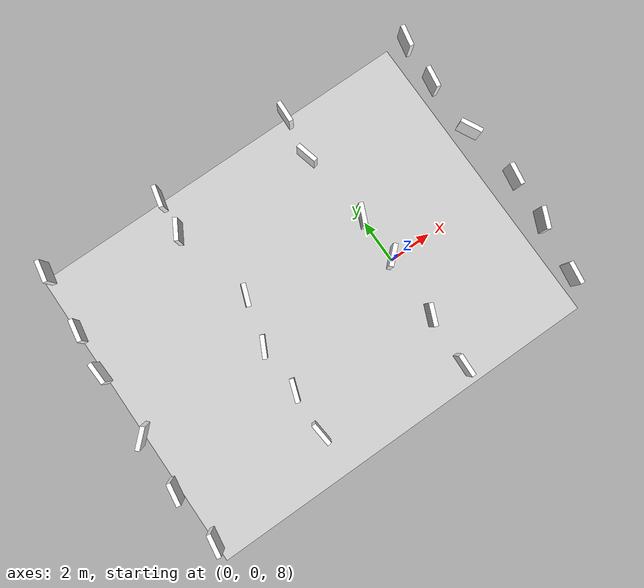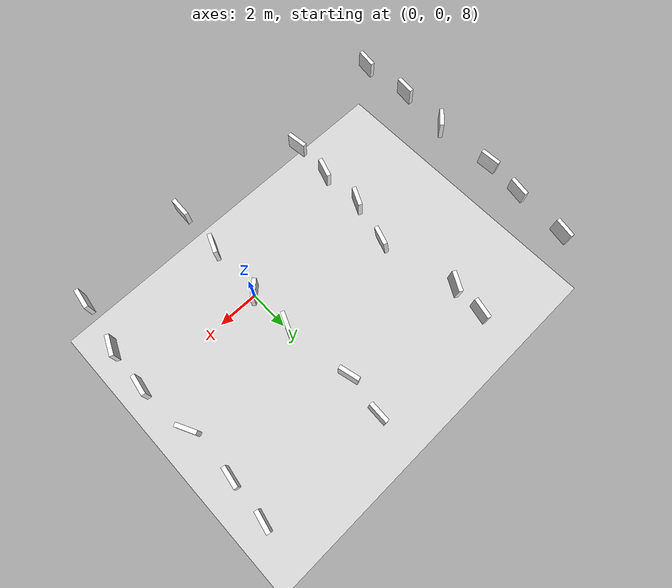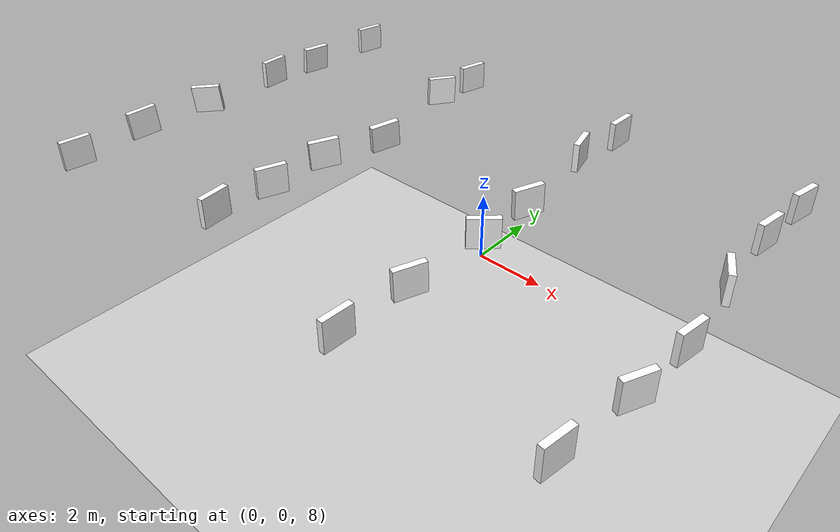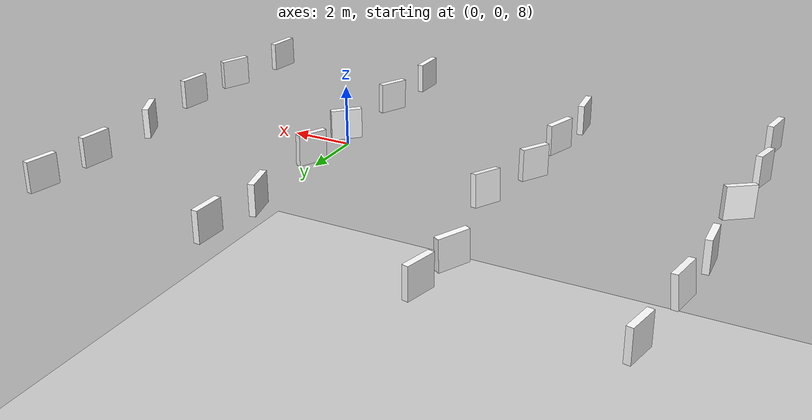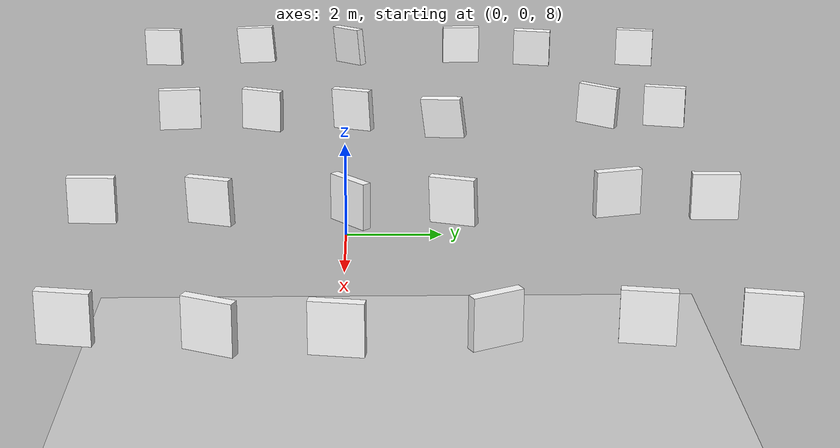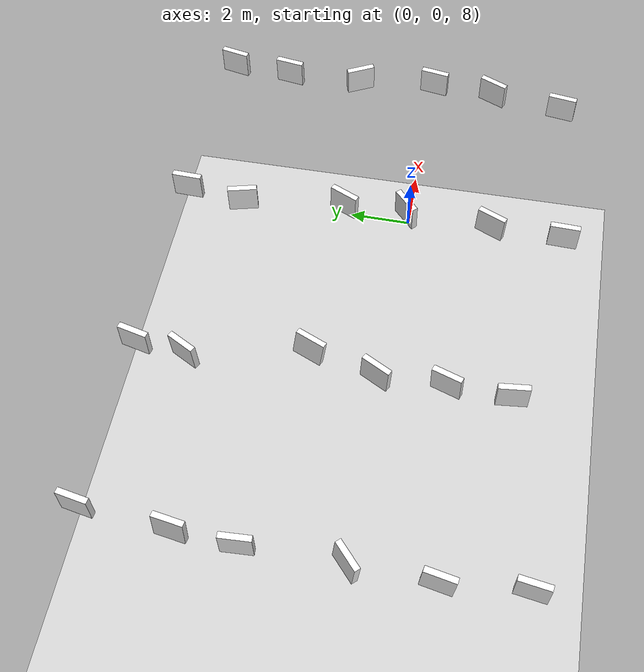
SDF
<sdf version="1.7">
 <world name="default">
  <light name="sun" type="directional">
   <pose>0 0 10 0 -0 0</pose>
   <diffuse>0.8 0.8 0.8 1</diffuse>
   <specular>0.2 0.2 0.2 1</specular>
   <attenuation>
    <range>1000</range>
    <constant>0.9</constant>
    <linear>0.01</linear>
    <quadratic>0.001</quadratic>
   </attenuation>
   <direction>-0.5 0.1 -0.9</direction>
   <spot><inner_angle>0</inner_angle><outer_angle>0</outer_angle><falloff>0</falloff></spot>
  </light>
  <model name="ground_plane">
   <static>1</static>
   <link name="link">
    <collision name="collision">
     <geometry><plane><normal>0 0 1</normal><size>100 100</size></plane></geometry>
     <surface>
      <contact><collide_bitmask>65535</collide_bitmask></contact>
      <friction><ode><mu>100</mu><mu2>50</mu2></ode></friction>
     </surface>
    </collision>
    <visual name="visual">
     <cast_shadows>0</cast_shadows>
     <geometry><plane><normal>0 0 1</normal><size>100 100</size></plane></geometry>
     <material>
      <script><uri>file://media/materials/scripts/gazebo.material</uri><name>Gazebo/Grey</name></script>
     </material>
    </visual>
   </link>
  </model>
  <physics name="default_physics" default="0" type="ode">
   <ode>
    <solver>
     <type>quick</type>
     <iters>10</iters>
     <sor>1.3</sor>
     <use_dynamic_moi_rescaling>0</use_dynamic_moi_rescaling>
    </solver>
    <constraints>
     <cfm>0</cfm>
     <erp>0.2</erp>
     <contact_max_correcting_vel>100</contact_max_correcting_vel>
     <contact_surface_layer>0.001</contact_surface_layer>
    </constraints>
   </ode>
   <max_step_size>0.004</max_step_size>
   <real_time_factor>1</real_time_factor>
   <real_time_update_rate>250</real_time_update_rate>
  </physics>
  <gravity>0 0 -9.8066</gravity>
  <magnetic_field>6e-06 2.3e-05 -4.2e-05</magnetic_field>
  <atmosphere type="adiabatic"/>
  <scene><ambient>0.4 0.4 0.4 1</ambient><background>0.7 0.7 0.7 1</background><shadows>1</shadows></scene>
  <spherical_coordinates>
   <surface_model>EARTH_WGS84</surface_model>
   <latitude_deg>0</latitude_deg>
   <longitude_deg>0</longitude_deg>
   <elevation>0</elevation>
   <heading_deg>0</heading_deg>
  </spherical_coordinates>
  <model name="aruco_marker1_clone">
   <link name="marker">
    <visual name="visual">
     <geometry><box><size>1 0.2 1</size></box></geometry>
     <material>
      <script>
       <uri>model://aruco_marker1/materials/scripts</uri>
       <uri>model://aruco_marker1/materials/textures</uri>
       <name>arucomarker1/Marker</name>
      </script>
      <ambient>1 1 1 1</ambient>
      <diffuse>1 1 1 1</diffuse>
      <specular>0 0 0 1</specular>
      <emissive>1 1 1 0</emissive>
      <shader type="vertex"><normal_map>__default__</normal_map></shader>
     </material>
    </visual>
    <collision name="collision"><geometry><box><size>1.2 0.8 1</size></box></geometry></collision>
    <inertial>
     <inertia><ixx>1</ixx><ixy>0</ixy><ixz>0</ixz><iyy>1</iyy><iyz>0</iyz><izz>1</izz></inertia>
     <mass>1</mass>
    </inertial>
   </link>
   <pose>5.87164 5.36753 8.75879 -0.001687 0.005684 1.41443</pose>
  </model>
  <model name="aruco_marker1_clone_0">
   <link name="marker">
    <visual name="visual">
     <geometry><box><size>1 0.2 1</size></box></geometry>
     <material>
      <script>
       <uri>model://aruco_marker1/materials/scripts</uri>
       <uri>model://aruco_marker1/materials/textures</uri>
       <name>arucomarker1/Marker</name>
      </script>
      <ambient>1 1 1 1</ambient>
      <diffuse>1 1 1 1</diffuse>
      <specular>0 0 0 1</specular>
      <emissive>1 1 1 0</emissive>
      <shader type="vertex"><normal_map>__default__</normal_map></shader>
     </material>
    </visual>
    <collision name="collision"><geometry><box><size>1.2 0.8 1</size></box></geometry></collision>
    <inertial>
     <inertia><ixx>1</ixx><ixy>0</ixy><ixz>0</ixz><iyy>1</iyy><iyz>0</iyz><izz>1</izz></inertia>
     <mass>1</mass>
    </inertial>
   </link>
   <pose>5.93775 2.69715 8.75946 0.002248 0.004376 2.03418</pose>
  </model>
  <model name="aruco_marker1_clone_2">
   <link name="marker">
    <visual name="visual">
     <geometry><box><size>1 0.2 1</size></box></geometry>
     <material>
      <script>
       <uri>model://aruco_marker1/materials/scripts</uri>
       <uri>model://aruco_marker1/materials/textures</uri>
       <name>arucomarker1/Marker</name>
      </script>
      <ambient>1 1 1 1</ambient>
      <diffuse>1 1 1 1</diffuse>
      <specular>0 0 0 1</specular>
      <emissive>1 1 1 0</emissive>
      <shader type="vertex"><normal_map>__default__</normal_map></shader>
     </material>
    </visual>
    <collision name="collision"><geometry><box><size>1.2 0.8 1</size></box></geometry></collision>
    <inertial>
     <inertia><ixx>1</ixx><ixy>0</ixy><ixz>0</ixz><iyy>1</iyy><iyz>0</iyz><izz>1</izz></inertia>
     <mass>1</mass>
    </inertial>
   </link>
   <pose>6.11721 -2.26937 8.75903 -0.001675 0.004039 1.153</pose>
  </model>
  <model name="aruco_marker1_clone_3">
   <link name="marker">
    <visual name="visual">
     <geometry><box><size>1 0.2 1</size></box></geometry>
     <material>
      <script>
       <uri>model://aruco_marker1/materials/scripts</uri>
       <uri>model://aruco_marker1/materials/textures</uri>
       <name>arucomarker1/Marker</name>
      </script>
      <ambient>1 1 1 1</ambient>
      <diffuse>1 1 1 1</diffuse>
      <specular>0 0 0 1</specular>
      <emissive>1 1 1 0</emissive>
      <shader type="vertex"><normal_map>__default__</normal_map></shader>
     </material>
    </visual>
    <collision name="collision"><geometry><box><size>1.2 0.8 1</size></box></geometry></collision>
    <inertial>
     <inertia><ixx>1</ixx><ixy>0</ixy><ixz>0</ixz><iyy>1</iyy><iyz>0</iyz><izz>1</izz></inertia>
     <mass>1</mass>
    </inertial>
   </link>
   <pose>5.74911 -4.82611 8.7588 -0.001879 0.005708 1.42094</pose>
  </model>
  <model name="aruco_marker1_clone_4">
   <link name="marker">
    <visual name="visual">
     <geometry><box><size>1 0.2 1</size></box></geometry>
     <material>
      <script>
       <uri>model://aruco_marker1/materials/scripts</uri>
       <uri>model://aruco_marker1/materials/textures</uri>
       <name>arucomarker1/Marker</name>
      </script>
      <ambient>1 1 1 1</ambient>
      <diffuse>1 1 1 1</diffuse>
      <specular>0 0 0 1</specular>
      <emissive>1 1 1 0</emissive>
      <shader type="vertex"><normal_map>__default__</normal_map></shader>
     </material>
    </visual>
    <collision name="collision"><geometry><box><size>1.2 0.8 1</size></box></geometry></collision>
    <inertial>
     <inertia><ixx>1</ixx><ixy>0</ixy><ixz>0</ixz><iyy>1</iyy><iyz>0</iyz><izz>1</izz></inertia>
     <mass>1</mass>
    </inertial>
   </link>
   <pose>-0.216361 7.7335 8.76068 -0.00013 -6.5e-05 1.5316</pose>
  </model>
  <model name="aruco_marker1_clone_5">
   <link name="marker">
    <visual name="visual">
     <geometry><box><size>1 0.2 1</size></box></geometry>
     <material>
      <script>
       <uri>model://aruco_marker1/materials/scripts</uri>
       <uri>model://aruco_marker1/materials/textures</uri>
       <name>arucomarker1/Marker</name>
      </script>
      <ambient>1 1 1 1</ambient>
      <diffuse>1 1 1 1</diffuse>
      <specular>0 0 0 1</specular>
      <emissive>1 1 1 0</emissive>
      <shader type="vertex"><normal_map>__default__</normal_map></shader>
     </material>
    </visual>
    <collision name="collision"><geometry><box><size>1.2 0.8 1</size></box></geometry></collision>
    <inertial>
     <inertia><ixx>1</ixx><ixy>0</ixy><ixz>0</ixz><iyy>1</iyy><iyz>0</iyz><izz>1</izz></inertia>
     <mass>1</mass>
    </inertial>
   </link>
   <pose>-0.472933 5.7209 8.75718 -0.000708 0.000633 1.813</pose>
  </model>
  <model name="aruco_marker1_clone_6">
   <link name="marker">
    <visual name="visual">
     <geometry><box><size>1 0.2 1</size></box></geometry>
     <material>
      <script>
       <uri>model://aruco_marker1/materials/scripts</uri>
       <uri>model://aruco_marker1/materials/textures</uri>
       <name>arucomarker1/Marker</name>
      </script>
      <ambient>1 1 1 1</ambient>
      <diffuse>1 1 1 1</diffuse>
      <specular>0 0 0 1</specular>
      <emissive>1 1 1 0</emissive>
      <shader type="vertex"><normal_map>__default__</normal_map></shader>
     </material>
    </visual>
    <collision name="collision"><geometry><box><size>1.2 0.8 1</size></box></geometry></collision>
    <inertial>
     <inertia><ixx>1</ixx><ixy>0</ixy><ixz>0</ixz><iyy>1</iyy><iyz>0</iyz><izz>1</izz></inertia>
     <mass>1</mass>
    </inertial>
   </link>
   <pose>-0.045556 2.23723 8.75486 0.012454 -0.035072 1.16346</pose>
  </model>
  <model name="aruco_marker1_clone_7">
   <link name="marker">
    <visual name="visual">
     <geometry><box><size>1 0.2 1</size></box></geometry>
     <material>
      <script>
       <uri>model://aruco_marker1/materials/scripts</uri>
       <uri>model://aruco_marker1/materials/textures</uri>
       <name>arucomarker1/Marker</name>
      </script>
      <ambient>1 1 1 1</ambient>
      <diffuse>1 1 1 1</diffuse>
      <specular>0 0 0 1</specular>
      <emissive>1 1 1 0</emissive>
      <shader type="vertex"><normal_map>__default__</normal_map></shader>
     </material>
    </visual>
    <collision name="collision"><geometry><box><size>1.2 0.8 1</size></box></geometry></collision>
    <inertial>
     <inertia><ixx>1</ixx><ixy>0</ixy><ixz>0</ixz><iyy>1</iyy><iyz>0</iyz><izz>1</izz></inertia>
     <mass>1</mass>
    </inertial>
   </link>
   <pose>-0.02159 0.094129 8.76036 -0.003209 0.002811 0.752373</pose>
  </model>
  <model name="aruco_marker1_clone_8">
   <link name="marker">
    <visual name="visual">
     <geometry><box><size>1 0.2 1</size></box></geometry>
     <material>
      <script>
       <uri>model://aruco_marker1/materials/scripts</uri>
       <uri>model://aruco_marker1/materials/textures</uri>
       <name>arucomarker1/Marker</name>
      </script>
      <ambient>1 1 1 1</ambient>
      <diffuse>1 1 1 1</diffuse>
      <specular>0 0 0 1</specular>
      <emissive>1 1 1 0</emissive>
      <shader type="vertex"><normal_map>__default__</normal_map></shader>
     </material>
    </visual>
    <collision name="collision"><geometry><box><size>1.2 0.8 1</size></box></geometry></collision>
    <inertial>
     <inertia><ixx>1</ixx><ixy>0</ixy><ixz>0</ixz><iyy>1</iyy><iyz>0</iyz><izz>1</izz></inertia>
     <mass>1</mass>
    </inertial>
   </link>
   <pose>-0.123298 -2.8288 8.75239 0.014797 -0.034297 1.17593</pose>
  </model>
  <model name="aruco_marker1_clone_9">
   <link name="marker">
    <visual name="visual">
     <geometry><box><size>1 0.2 1</size></box></geometry>
     <material>
      <script>
       <uri>model://aruco_marker1/materials/scripts</uri>
       <uri>model://aruco_marker1/materials/textures</uri>
       <name>arucomarker1/Marker</name>
      </script>
      <ambient>1 1 1 1</ambient>
      <diffuse>1 1 1 1</diffuse>
      <specular>0 0 0 1</specular>
      <emissive>1 1 1 0</emissive>
      <shader type="vertex"><normal_map>__default__</normal_map></shader>
     </material>
    </visual>
    <collision name="collision"><geometry><box><size>1.2 0.8 1</size></box></geometry></collision>
    <inertial>
     <inertia><ixx>1</ixx><ixy>0</ixy><ixz>0</ixz><iyy>1</iyy><iyz>0</iyz><izz>1</izz></inertia>
     <mass>1</mass>
    </inertial>
   </link>
   <pose>-0.210534 -5.29445 8.75709 0.000151 2e-05 1.52941</pose>
  </model>
  <model name="aruco_marker1_clone_10">
   <link name="marker">
    <visual name="visual">
     <geometry><box><size>1 0.2 1</size></box></geometry>
     <material>
      <script>
       <uri>model://aruco_marker1/materials/scripts</uri>
       <uri>model://aruco_marker1/materials/textures</uri>
       <name>arucomarker1/Marker</name>
      </script>
      <ambient>1 1 1 1</ambient>
      <diffuse>1 1 1 1</diffuse>
      <specular>0 0 0 1</specular>
      <emissive>1 1 1 0</emissive>
      <shader type="vertex"><normal_map>__default__</normal_map></shader>
     </material>
    </visual>
    <collision name="collision"><geometry><box><size>1.2 0.8 1</size></box></geometry></collision>
    <inertial>
     <inertia><ixx>1</ixx><ixy>0</ixy><ixz>0</ixz><iyy>1</iyy><iyz>0</iyz><izz>1</izz></inertia>
     <mass>1</mass>
    </inertial>
   </link>
   <pose>-6.6459 -4.1663 8.76071 9e-06 6.6e-05 1.67077</pose>
  </model>
  <model name="aruco_marker1_clone_11">
   <link name="marker">
    <visual name="visual">
     <geometry><box><size>1 0.2 1</size></box></geometry>
     <material>
      <script>
       <uri>model://aruco_marker1/materials/scripts</uri>
       <uri>model://aruco_marker1/materials/textures</uri>
       <name>arucomarker1/Marker</name>
      </script>
      <ambient>1 1 1 1</ambient>
      <diffuse>1 1 1 1</diffuse>
      <specular>0 0 0 1</specular>
      <emissive>1 1 1 0</emissive>
      <shader type="vertex"><normal_map>__default__</normal_map></shader>
     </material>
    </visual>
    <collision name="collision"><geometry><box><size>1.2 0.8 1</size></box></geometry></collision>
    <inertial>
     <inertia><ixx>1</ixx><ixy>0</ixy><ixz>0</ixz><iyy>1</iyy><iyz>0</iyz><izz>1</izz></inertia>
     <mass>1</mass>
    </inertial>
   </link>
   <pose>-6.54875 -2.12946 8.76279 -0.00269 0.008867 1.24114</pose>
  </model>
  <model name="aruco_marker1_clone_13">
   <link name="marker">
    <visual name="visual">
     <geometry><box><size>1 0.2 1</size></box></geometry>
     <material>
      <script>
       <uri>model://aruco_marker1/materials/scripts</uri>
       <uri>model://aruco_marker1/materials/textures</uri>
       <name>arucomarker1/Marker</name>
      </script>
      <ambient>1 1 1 1</ambient>
      <diffuse>1 1 1 1</diffuse>
      <specular>0 0 0 1</specular>
      <emissive>1 1 1 0</emissive>
      <shader type="vertex"><normal_map>__default__</normal_map></shader>
     </material>
    </visual>
    <collision name="collision"><geometry><box><size>1.2 0.8 1</size></box></geometry></collision>
    <inertial>
     <inertia><ixx>1</ixx><ixy>0</ixy><ixz>0</ixz><iyy>1</iyy><iyz>0</iyz><izz>1</izz></inertia>
     <mass>1</mass>
    </inertial>
   </link>
   <pose>-6.00602 2.28148 8.7088 0.12406 -0.092184 1.21042</pose>
  </model>
  <model name="aruco_marker1_clone_14">
   <link name="marker">
    <visual name="visual">
     <geometry><box><size>1 0.2 1</size></box></geometry>
     <material>
      <script>
       <uri>model://aruco_marker1/materials/scripts</uri>
       <uri>model://aruco_marker1/materials/textures</uri>
       <name>arucomarker1/Marker</name>
      </script>
      <ambient>1 1 1 1</ambient>
      <diffuse>1 1 1 1</diffuse>
      <specular>0 0 0 1</specular>
      <emissive>1 1 1 0</emissive>
      <shader type="vertex"><normal_map>__default__</normal_map></shader>
     </material>
    </visual>
    <collision name="collision"><geometry><box><size>1.2 0.8 1</size></box></geometry></collision>
    <inertial>
     <inertia><ixx>1</ixx><ixy>0</ixy><ixz>0</ixz><iyy>1</iyy><iyz>0</iyz><izz>1</izz></inertia>
     <mass>1</mass>
    </inertial>
   </link>
   <pose>-6.82468 6.14102 8.75087 -0.023081 0.04273 1.06143</pose>
  </model>
  <model name="aruco_marker1_clone_15">
   <link name="marker">
    <visual name="visual">
     <geometry><box><size>1 0.2 1</size></box></geometry>
     <material>
      <script>
       <uri>model://aruco_marker1/materials/scripts</uri>
       <uri>model://aruco_marker1/materials/textures</uri>
       <name>arucomarker1/Marker</name>
      </script>
      <ambient>1 1 1 1</ambient>
      <diffuse>1 1 1 1</diffuse>
      <specular>0 0 0 1</specular>
      <emissive>1 1 1 0</emissive>
      <shader type="vertex"><normal_map>__default__</normal_map></shader>
     </material>
    </visual>
    <collision name="collision"><geometry><box><size>1.2 0.8 1</size></box></geometry></collision>
    <inertial>
     <inertia><ixx>1</ixx><ixy>0</ixy><ixz>0</ixz><iyy>1</iyy><iyz>0</iyz><izz>1</izz></inertia>
     <mass>1</mass>
    </inertial>
   </link>
   <pose>-6.68384 7.76407 8.7612 0.000363 -0.00044 1.33648</pose>
  </model>
  <model name="aruco_marker1_clone_18">
   <link name="marker">
    <visual name="visual">
     <geometry><box><size>1 0.2 1</size></box></geometry>
     <material>
      <script>
       <uri>model://aruco_marker1/materials/scripts</uri>
       <uri>model://aruco_marker1/materials/textures</uri>
       <name>arucomarker1/Marker</name>
      </script>
      <ambient>1 1 1 1</ambient>
      <diffuse>1 1 1 1</diffuse>
      <specular>0 0 0 1</specular>
      <emissive>1 1 1 0</emissive>
      <shader type="vertex"><normal_map>__default__</normal_map></shader>
     </material>
    </visual>
    <collision name="collision"><geometry><box><size>1.2 0.8 1</size></box></geometry></collision>
    <inertial>
     <inertia><ixx>1</ixx><ixy>0</ixy><ixz>0</ixz><iyy>1</iyy><iyz>0</iyz><izz>1</izz></inertia>
     <mass>1</mass>
    </inertial>
   </link>
   <pose>-12.7457 3.04085 8.75847 0.000341 0.005419 1.6177</pose>
  </model>
  <model name="aruco_marker1_clone_20">
   <link name="marker">
    <visual name="visual">
     <geometry><box><size>1 0.2 1</size></box></geometry>
     <material>
      <script>
       <uri>model://aruco_marker1/materials/scripts</uri>
       <uri>model://aruco_marker1/materials/textures</uri>
       <name>arucomarker1/Marker</name>
      </script>
      <ambient>1 1 1 1</ambient>
      <diffuse>1 1 1 1</diffuse>
      <specular>0 0 0 1</specular>
      <emissive>1 1 1 0</emissive>
      <shader type="vertex"><normal_map>__default__</normal_map></shader>
     </material>
    </visual>
    <collision name="collision"><geometry><box><size>1.2 0.8 1</size></box></geometry></collision>
    <inertial>
     <inertia><ixx>1</ixx><ixy>0</ixy><ixz>0</ixz><iyy>1</iyy><iyz>0</iyz><izz>1</izz></inertia>
     <mass>1</mass>
    </inertial>
   </link>
   <pose>-12.8265 -2.68545 8.75742 0.014918 -0.076395 1.41061</pose>
  </model>
  <model name="aruco_marker1_clone_25">
   <link name="marker">
    <visual name="visual">
     <geometry><box><size>1 0.2 1</size></box></geometry>
     <material>
      <script>
       <uri>model://aruco_marker1/materials/scripts</uri>
       <uri>model://aruco_marker1/materials/textures</uri>
       <name>arucomarker1/Marker</name>
      </script>
      <ambient>1 1 1 1</ambient>
      <diffuse>1 1 1 1</diffuse>
      <specular>0 0 0 1</specular>
      <emissive>1 1 1 0</emissive>
      <shader type="vertex"><normal_map>__default__</normal_map></shader>
     </material>
    </visual>
    <collision name="collision"><geometry><box><size>1.2 0.8 1</size></box></geometry></collision>
    <inertial>
     <inertia><ixx>1</ixx><ixy>0</ixy><ixz>0</ixz><iyy>1</iyy><iyz>0</iyz><izz>1</izz></inertia>
     <mass>1</mass>
    </inertial>
   </link>
   <pose>-12.7148 -0.086237 8.75186 0.062612 -0.065245 0.750412</pose>
  </model>
  <model name="aruco_marker1_clone_27">
   <link name="marker">
    <visual name="visual">
     <geometry><box><size>1 0.2 1</size></box></geometry>
     <material>
      <script>
       <uri>model://aruco_marker1/materials/scripts</uri>
       <uri>model://aruco_marker1/materials/textures</uri>
       <name>arucomarker1/Marker</name>
      </script>
      <ambient>1 1 1 1</ambient>
      <diffuse>1 1 1 1</diffuse>
      <specular>0 0 0 1</specular>
      <emissive>1 1 1 0</emissive>
      <shader type="vertex"><normal_map>__default__</normal_map></shader>
     </material>
    </visual>
    <collision name="collision"><geometry><box><size>1.2 0.8 1</size></box></geometry></collision>
    <inertial>
     <inertia><ixx>1</ixx><ixy>0</ixy><ixz>0</ixz><iyy>1</iyy><iyz>0</iyz><izz>1</izz></inertia>
     <mass>1</mass>
    </inertial>
   </link>
   <pose>-12.6047 -5.2613 8.75779 0.003208 -0.014558 1.42752</pose>
  </model>
  <model name="aruco_marker1_clone_17_clone">
   <link name="marker">
    <visual name="visual">
     <geometry><box><size>1 0.2 1</size></box></geometry>
     <material>
      <script>
       <uri>model://aruco_marker1/materials/scripts</uri>
       <uri>model://aruco_marker1/materials/textures</uri>
       <name>arucomarker1/Marker</name>
      </script>
      <ambient>1 1 1 1</ambient>
      <diffuse>1 1 1 1</diffuse>
      <specular>0 0 0 1</specular>
      <emissive>1 1 1 0</emissive>
      <shader type="vertex"><normal_map>__default__</normal_map></shader>
     </material>
    </visual>
    <collision name="collision"><geometry><box><size>1.2 0.8 1</size></box></geometry></collision>
    <inertial>
     <inertia><ixx>1</ixx><ixy>0</ixy><ixz>0</ixz><iyy>1</iyy><iyz>0</iyz><izz>1</izz></inertia>
     <mass>1</mass>
    </inertial>
   </link>
   <pose>-12.359 7.87055 8.75946 -0.000842 0.004202 1.38656</pose>
  </model>
  <model name="aruco_marker1_clone_clone">
   <link name="marker">
    <visual name="visual">
     <geometry><box><size>1 0.2 1</size></box></geometry>
     <material>
      <script>
       <uri>model://aruco_marker1/materials/scripts</uri>
       <uri>model://aruco_marker1/materials/textures</uri>
       <name>arucomarker1/Marker</name>
      </script>
      <ambient>1 1 1 1</ambient>
      <diffuse>1 1 1 1</diffuse>
      <specular>0 0 0 1</specular>
      <emissive>1 1 1 0</emissive>
      <shader type="vertex"><normal_map>__default__</normal_map></shader>
     </material>
    </visual>
    <collision name="collision"><geometry><box><size>1.2 0.8 1</size></box></geometry></collision>
    <inertial>
     <inertia><ixx>1</ixx><ixy>0</ixy><ixz>0</ixz><iyy>1</iyy><iyz>0</iyz><izz>1</izz></inertia>
     <mass>1</mass>
    </inertial>
   </link>
   <pose>6.02002 7.4972 8.75698 -1.8e-05 1e-05 1.36386</pose>
  </model>
  <model name="aruco_marker1_clone_clone_0">
   <link name="marker">
    <visual name="visual">
     <geometry><box><size>1 0.2 1</size></box></geometry>
     <material>
      <script>
       <uri>model://aruco_marker1/materials/scripts</uri>
       <uri>model://aruco_marker1/materials/textures</uri>
       <name>arucomarker1/Marker</name>
      </script>
      <ambient>1 1 1 1</ambient>
      <diffuse>1 1 1 1</diffuse>
      <specular>0 0 0 1</specular>
      <emissive>1 1 1 0</emissive>
      <shader type="vertex"><normal_map>__default__</normal_map></shader>
     </material>
    </visual>
    <collision name="collision"><geometry><box><size>1.2 0.8 1</size></box></geometry></collision>
    <inertial>
     <inertia><ixx>1</ixx><ixy>0</ixy><ixz>0</ixz><iyy>1</iyy><iyz>0</iyz><izz>1</izz></inertia>
     <mass>1</mass>
    </inertial>
   </link>
   <pose>6.26117 -0.064161 8.7573 6e-06 -2.8e-05 1.41131</pose>
  </model>
  <model name="aruco_marker1_clone_11_clone">
   <link name="marker">
    <visual name="visual">
     <geometry><box><size>1 0.2 1</size></box></geometry>
     <material>
      <script>
       <uri>model://aruco_marker1/materials/scripts</uri>
       <uri>model://aruco_marker1/materials/textures</uri>
       <name>arucomarker1/Marker</name>
      </script>
      <ambient>1 1 1 1</ambient>
      <diffuse>1 1 1 1</diffuse>
      <specular>0 0 0 1</specular>
      <emissive>1 1 1 0</emissive>
      <shader type="vertex"><normal_map>__default__</normal_map></shader>
     </material>
    </visual>
    <collision name="collision"><geometry><box><size>1.2 0.8 1</size></box></geometry></collision>
    <inertial>
     <inertia><ixx>1</ixx><ixy>0</ixy><ixz>0</ixz><iyy>1</iyy><iyz>0</iyz><izz>1</izz></inertia>
     <mass>1</mass>
    </inertial>
   </link>
   <pose>-6.58971 0.077676 8.75398 0.031292 -0.044318 1.10404</pose>
  </model>
  <model name="aruco_marker1_clone_17_clone_clone">
   <link name="marker">
    <visual name="visual">
     <geometry><box><size>1 0.2 1</size></box></geometry>
     <material>
      <script>
       <uri>model://aruco_marker1/materials/scripts</uri>
       <uri>model://aruco_marker1/materials/textures</uri>
       <name>arucomarker1/Marker</name>
      </script>
      <ambient>1 1 1 1</ambient>
      <diffuse>1 1 1 1</diffuse>
      <specular>0 0 0 1</specular>
      <emissive>1 1 1 0</emissive>
      <shader type="vertex"><normal_map>__default__</normal_map></shader>
     </material>
    </visual>
    <collision name="collision"><geometry><box><size>1.2 0.8 1</size></box></geometry></collision>
    <inertial>
     <inertia><ixx>1</ixx><ixy>0</ixy><ixz>0</ixz><iyy>1</iyy><iyz>0</iyz><izz>1</izz></inertia>
     <mass>1</mass>
    </inertial>
   </link>
   <pose>-12.5857 5.0266 8.70593 0.090111 0.015837 1.40633</pose>
  </model>
 </world>
</sdf>
